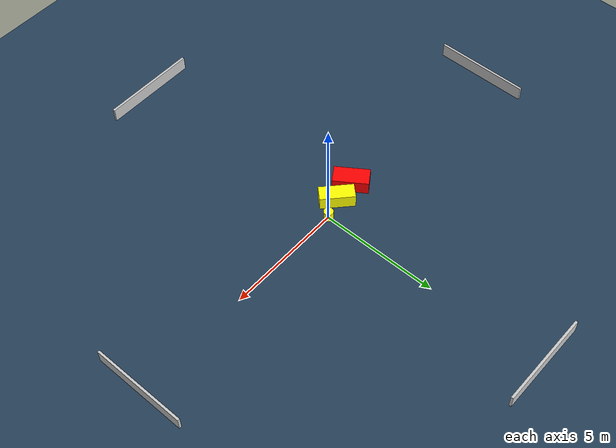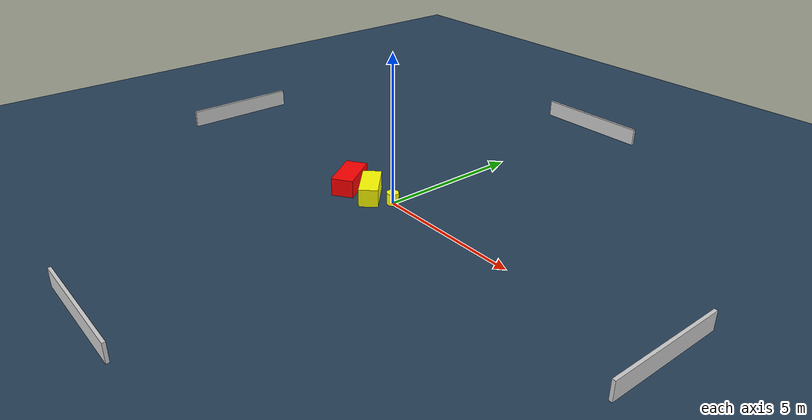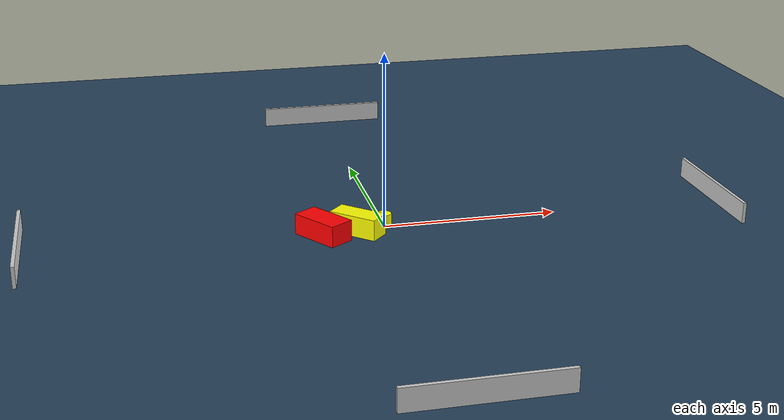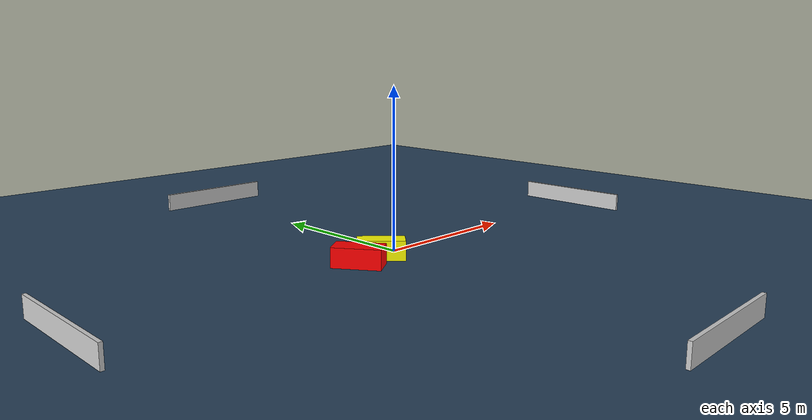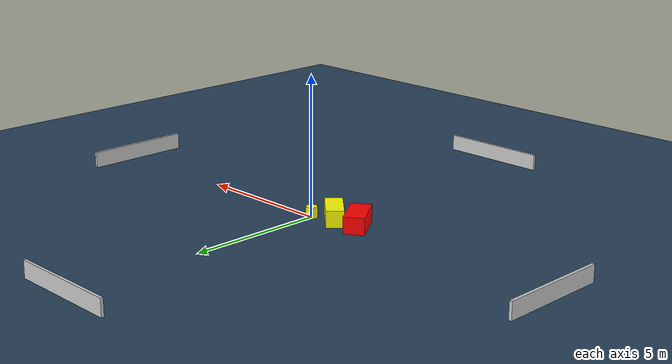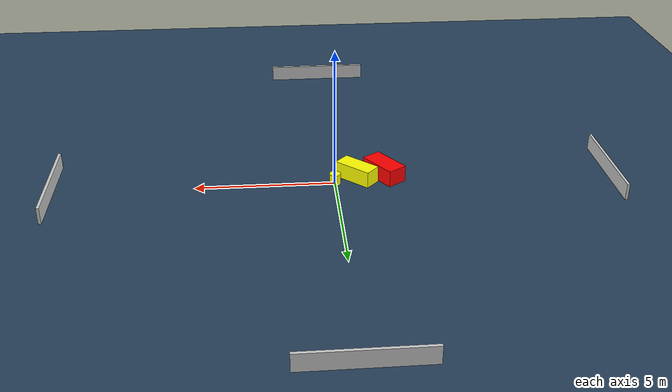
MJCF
<?xml version="1.0" ?>
<mujoco model="generated_environment">
  <option timestep="0.01" integrator="RK4" cone="elliptic"/>
  <default>
    <geom density="1"/>
  </default>
  <asset>
    <texture builtin="gradient" height="3072" name="skybox" rgb1="0.3 0.5 0.7" rgb2="0 0 0" type="skybox" width="512"/>
    <texture builtin="checker" height="300" name="groundplane" rgb1="0.2 0.3 0.4" rgb2="0.1 0.2 0.3" type="2d" width="300"/>
    <material name="groundplane" reflectance="0.2" texrepeat="5 5" texture="groundplane"/>
  </asset>
  <worldbody>
    <light dir="0 0 -1" directional="true" pos="0 0 1.5"/>
    <geom condim="3" friction="0.5 0.005 0.001" material="groundplane" name="floor" pos="0 0 0" size="0 0 0.05" type="plane"/>
    <body name="walls">
      <geom name="wall_1" condim="4" pos="-10.0 0.0 0.3" rgba="0.800000011920929 0.800000011920929 0.800000011920929 1.0" size="0.05 2.0 0.3" type="box"/>
      <geom name="wall_2" condim="4" pos="10.0 0.0 0.3" rgba="0.800000011920929 0.800000011920929 0.800000011920929 1.0" size="0.05 2.0 0.3" type="box"/>
      <geom name="wall_3" condim="4" pos="0.0 -10.0 0.3" rgba="0.800000011920929 0.800000011920929 0.800000011920929 1.0" size="2.0 0.05 0.3" type="box"/>
      <geom name="wall_4" condim="4" pos="0.0 10.0 0.3" rgba="0.800000011920929 0.800000011920929 0.800000011920929 1.0" size="2.0 0.05 0.3" type="box"/>
    </body>
    <body name="robot">
      <joint name="joint_x" type="slide" pos="0 0 0" axis="1 0 0"/>
      <joint name="joint_y" type="slide" pos="0 0 0" axis="0 1 0"/>
      <geom name="robot" type="cylinder" pos="0.0 0.0 0.2" size="0.2 0.2 0.0" mass="5.0" friction="1.0 0.005 0.0001" condim="4" rgba="1.0 1.0 0.0 1.0"/>
    </body>
    <body name="obstacle_1_movable">
      <geom name="obstacle_1_movable" condim="4" pos="-0.816705423341452 -0.28011311363016533 0.3" euler="0 0 137.1956404405101" friction="0.0 0.005 0.001" rgba="1.0 1.0 0.0 1.0" size="0.7137500643811123 0.315846097886603 0.3" type="box" mass="0.1"/>
      <joint type="free"/>
    </body>
    <body name="obstacle_2_static">
      <geom name="obstacle_2_static" condim="4" pos="-1.814412796477059 -0.38839368563912063 0.3" euler="0 0 214.14061662848502" friction="0.0 0.005 0.001" rgba="1.0 0.0 0.0 1.0" size="0.3691656076698696 0.7326940150458876 0.3" type="box"/>
    </body>
  </worldbody>
  <actuator>
    <motor name="actuator_x" joint="joint_x" gear="1" ctrlrange="-1 1"/>
    <motor name="actuator_y" joint="joint_y" gear="1" ctrlrange="-1 1"/>
  </actuator>
</mujoco>
